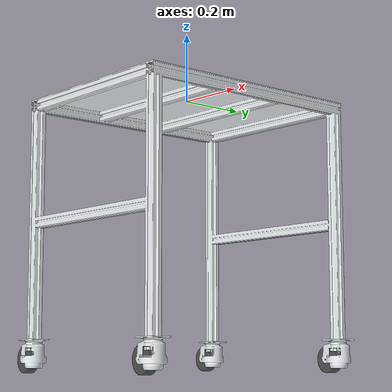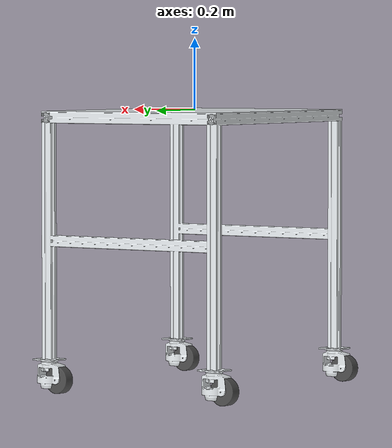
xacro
<?xml version="1.0" encoding="utf-8"?>
<robot xmlns:xacro="http://www.ros.org/wiki/xacro"
  name="M_table_1">
  <link
    name="Manipulator_table">
    <inertial>
      <origin
        xyz="-1.11022302462516E-16 -3.33066907387547E-16 -0.12843839742467"
        rpy="0 0 0" />
      <mass
        value="9.44837783117277" />
      <inertia
        ixx="0.263691414833342"
        ixy="-2.16344567972567E-17"
        ixz="7.54463426580892E-19"
        iyy="0.221672763716765"
        iyz="4.92737402253372E-20"
        izz="0.320610679708212" />
    </inertial>
    <visual>
      <origin
        xyz="0 0 0"
        rpy="0 0 0" />
      <geometry>
        <mesh
          filename="package://ur3e_robot_description/meshes/table/Manipulator_table.STL" />
      </geometry>
      <material
        name="">
        <color
          rgba="0.898039215686275 0.917647058823529 0.929411764705882 1" />
      </material>
    </visual>
    <collision>
      <origin
        xyz="0 0 0"
        rpy="0 0 0" />
      <geometry>
        <mesh
          filename="package://ur3e_robot_description/meshes/table/Manipulator_table.STL" />
      </geometry>
    </collision>
  </link>
  <link
    name="Caster_Body_RR">
    <inertial>
      <origin
        xyz="-0.0010819914602479 -2.86080234945807E-06 -0.0436046218691041"
        rpy="0 0 0" />
      <mass
        value="0.401423455702813" />
      <inertia
        ixx="0.000241401012917318"
        ixy="-2.45853840008132E-08"
        ixz="8.72091409234467E-07"
        iyy="0.000298338270939389"
        iyz="-6.11684660408836E-10"
        izz="0.000239127388240778" />
    </inertial>
    <visual>
      <origin
        xyz="0 0 0"
        rpy="0 0 0" />
      <geometry>
        <mesh
          filename="package://ur3e_robot_description/meshes/table/Caster_Body_RR.STL" />
      </geometry>
      <material
        name="">
        <color
          rgba="0.898039215686275 0.917647058823529 0.929411764705882 1" />
      </material>
    </visual>
    <collision>
      <origin
        xyz="0 0 0"
        rpy="0 0 0" />
      <geometry>
        <mesh
          filename="package://ur3e_robot_description/meshes/table/Caster_Body_RR.STL" />
      </geometry>
    </collision>
  </link>
  <joint
    name="J_Caster_Body_RR"
    type="fixed">
    <origin
      xyz="-0.265 -0.335 -0.683"
      rpy="0 0 -0.0941732290527097" />
    <parent
      link="Manipulator_table" />
    <child
      link="Caster_Body_RR" />
    <axis
      xyz="0 0 1" />
  </joint>
  <link
    name="Caster_Wheel_RR">
    <inertial>
      <origin
        xyz="-1.11022302462516E-16 3.46944695195361E-18 1.11022302462516E-16"
        rpy="0 0 0" />
      <mass
        value="0.132136244110216" />
      <inertia
        ixx="5.61757127027404E-05"
        ixy="1.66435558133998E-21"
        ixz="-4.2351647362715E-22"
        iyy="5.61757127027403E-05"
        iyz="-1.30158555596785E-21"
        izz="9.26404044822224E-05" />
    </inertial>
    <visual>
      <origin
        xyz="0 0 0"
        rpy="0 0 0" />
      <geometry>
        <mesh
          filename="package://ur3e_robot_description/meshes/table/Caster_Wheel_RR.STL" />
      </geometry>
      <material
        name="">
        <color
          rgba="0.298039215686275 0.298039215686275 0.298039215686275 1" />
      </material>
    </visual>
    <collision>
      <origin
        xyz="0 0 0"
        rpy="0 0 0" />
      <geometry>
        <mesh
          filename="package://ur3e_robot_description/meshes/table/Caster_Wheel_RR.STL" />
      </geometry>
    </collision>
  </link>
  <joint
    name="J_Caster_Wheel_RR"
    type="fixed">
    <origin
      xyz="-0.0344500000000002 0 -0.056225"
      rpy="1.5707963267949 0 0" />
    <parent
      link="Caster_Body_RR" />
    <child
      link="Caster_Wheel_RR" />
    <axis
      xyz="0 0 -1" />
  </joint>
  <link
    name="Caster_Body_RF">
    <inertial>
      <origin
        xyz="-0.00108199157851491 -2.86062615473259E-06 -0.0436046217372837"
        rpy="0 0 0" />
      <mass
        value="0.401423458524117" />
      <inertia
        ixx="0.000241401013878427"
        ixy="-2.45831797236014E-08"
        ixz="8.72092344291227E-07"
        iyy="0.000298338271551571"
        iyz="-6.12822902530198E-10"
        izz="0.000239127388381237" />
    </inertial>
    <visual>
      <origin
        xyz="0 0 0"
        rpy="0 0 0" />
      <geometry>
        <mesh
          filename="package://ur3e_robot_description/meshes/table/Caster_Body_RF.STL" />
      </geometry>
      <material
        name="">
        <color
          rgba="0.898039215686275 0.917647058823529 0.929411764705882 1" />
      </material>
    </visual>
    <collision>
      <origin
        xyz="0 0 0"
        rpy="0 0 0" />
      <geometry>
        <mesh
          filename="package://ur3e_robot_description/meshes/table/Caster_Body_RF.STL" />
      </geometry>
    </collision>
  </link>
  <joint
    name="J_Caster_Body_RF"
    type="fixed">
    <origin
      xyz="0.265 -0.335 -0.683"
      rpy="0 0 -0.101833662211255" />
    <parent
      link="Manipulator_table" />
    <child
      link="Caster_Body_RF" />
    <axis
      xyz="0 0 1" />
  </joint>
  <link
    name="Caster_Wheel_RF">
    <inertial>
      <origin
        xyz="-2.77555756156289E-17 0 -1.11022302462516E-16"
        rpy="0 0 0" />
      <mass
        value="0.132136244110216" />
      <inertia
        ixx="5.61757127027405E-05"
        ixy="3.43126324185448E-21"
        ixz="-6.7762635780344E-21"
        iyy="5.61757127027405E-05"
        iyz="5.67015494947863E-21"
        izz="9.26404044822227E-05" />
    </inertial>
    <visual>
      <origin
        xyz="0 0 0"
        rpy="0 0 0" />
      <geometry>
        <mesh
          filename="package://ur3e_robot_description/meshes/table/Caster_Wheel_RF.STL" />
      </geometry>
      <material
        name="">
        <color
          rgba="0.298039215686275 0.298039215686275 0.298039215686275 1" />
      </material>
    </visual>
    <collision>
      <origin
        xyz="0 0 0"
        rpy="0 0 0" />
      <geometry>
        <mesh
          filename="package://ur3e_robot_description/meshes/table/Caster_Wheel_RF.STL" />
      </geometry>
    </collision>
  </link>
  <joint
    name="J_Caster_Wheel_RF"
    type="fixed">
    <origin
      xyz="-0.0344499999999999 0 -0.056225"
      rpy="1.5707963267949 0 0" />
    <parent
      link="Caster_Body_RF" />
    <child
      link="Caster_Wheel_RF" />
    <axis
      xyz="0 0 -1" />
  </joint>
  <link
    name="Caster_Body_LR">
    <inertial>
      <origin
        xyz="-0.00108199158371591 -2.86062812537846E-06 -0.0436046217365273"
        rpy="0 0 0" />
      <mass
        value="0.401423458405097" />
      <inertia
        ixx="0.000241401013850428"
        ixy="-2.45831616665869E-08"
        ixz="8.72092308562468E-07"
        iyy="0.000298338271473234"
        iyz="-6.12834050320692E-10"
        izz="0.000239127388320259" />
    </inertial>
    <visual>
      <origin
        xyz="0 0 0"
        rpy="0 0 0" />
      <geometry>
        <mesh
          filename="package://ur3e_robot_description/meshes/table/Caster_Body_LR.STL" />
      </geometry>
      <material
        name="">
        <color
          rgba="0.898039215686275 0.917647058823529 0.929411764705882 1" />
      </material>
    </visual>
    <collision>
      <origin
        xyz="0 0 0"
        rpy="0 0 0" />
      <geometry>
        <mesh
          filename="package://ur3e_robot_description/meshes/table/Caster_Body_LR.STL" />
      </geometry>
    </collision>
  </link>
  <joint
    name="J_Caster_Body_LR"
    type="fixed">
    <origin
      xyz="-0.265 0.335 -0.683"
      rpy="0 0 -0.101833662211255" />
    <parent
      link="Manipulator_table" />
    <child
      link="Caster_Body_LR" />
    <axis
      xyz="0 0 1" />
  </joint>
  <link
    name="Caster_Wheel_LR">
    <inertial>
      <origin
        xyz="0 0 0"
        rpy="0 0 0" />
      <mass
        value="0.132136244110216" />
      <inertia
        ixx="5.61757127027404E-05"
        ixy="-9.99488879800872E-22"
        ixz="-1.3976043629696E-20"
        iyy="5.61757127027403E-05"
        iyz="6.4983051750949E-22"
        izz="9.26404044822225E-05" />
    </inertial>
    <visual>
      <origin
        xyz="0 0 0"
        rpy="0 0 0" />
      <geometry>
        <mesh
          filename="package://ur3e_robot_description/meshes/table/Caster_Wheel_LR.STL" />
      </geometry>
      <material
        name="">
        <color
          rgba="0.298039215686275 0.298039215686275 0.298039215686275 1" />
      </material>
    </visual>
    <collision>
      <origin
        xyz="0 0 0"
        rpy="0 0 0" />
      <geometry>
        <mesh
          filename="package://ur3e_robot_description/meshes/table/Caster_Wheel_LR.STL" />
      </geometry>
    </collision>
  </link>
  <joint
    name="J_Caster_Wheel_LR"
    type="fixed">
    <origin
      xyz="-0.0344500000000002 0 -0.0562249999999998"
      rpy="1.5707963267949 0 0" />
    <parent
      link="Caster_Body_LR" />
    <child
      link="Caster_Wheel_LR" />
    <axis
      xyz="0 0 -1" />
  </joint>
  <link
    name="Caster_Body_LF">
    <inertial>
      <origin
        xyz="-0.00108199158371469 -2.86062813779908E-06 -0.0436046217365266"
        rpy="0 0 0" />
      <mass
        value="0.401423458405148" />
      <inertia
        ixx="0.00024140101385046"
        ixy="-2.45831617231281E-08"
        ixz="8.72092308559734E-07"
        iyy="0.000298338271473235"
        iyz="-6.12833973194068E-10"
        izz="0.000239127388320258" />
    </inertial>
    <visual>
      <origin
        xyz="0 0 0"
        rpy="0 0 0" />
      <geometry>
        <mesh
          filename="package://ur3e_robot_description/meshes/table/Caster_Body_LF.STL" />
      </geometry>
      <material
        name="">
        <color
          rgba="0.898039215686275 0.917647058823529 0.929411764705882 1" />
      </material>
    </visual>
    <collision>
      <origin
        xyz="0 0 0"
        rpy="0 0 0" />
      <geometry>
        <mesh
          filename="package://ur3e_robot_description/meshes/table/Caster_Body_LF.STL" />
      </geometry>
    </collision>
  </link>
  <joint
    name="J_Caster_Body_LF"
    type="fixed">
    <origin
      xyz="0.265 0.335 -0.683"
      rpy="0 0 -0.101833662211255" />
    <parent
      link="Manipulator_table" />
    <child
      link="Caster_Body_LF" />
    <axis
      xyz="0 0 1" />
  </joint>
  <link
    name="Caster_Wheel_LF">
    <inertial>
      <origin
        xyz="0 -3.46944695195361E-18 -1.38777878078145E-17"
        rpy="0 0 0" />
      <mass
        value="0.132136244110216" />
      <inertia
        ixx="5.61757127027404E-05"
        ixy="5.44753992083278E-21"
        ixz="-9.3173624197973E-21"
        iyy="5.61757127027404E-05"
        iyz="4.35034367839207E-21"
        izz="9.26404044822226E-05" />
    </inertial>
    <visual>
      <origin
        xyz="0 0 0"
        rpy="0 0 0" />
      <geometry>
        <mesh
          filename="package://ur3e_robot_description/meshes/table/Caster_Wheel_LF.STL" />
      </geometry>
      <material
        name="">
        <color
          rgba="0.298039215686275 0.298039215686275 0.298039215686275 1" />
      </material>
    </visual>
    <collision>
      <origin
        xyz="0 0 0"
        rpy="0 0 0" />
      <geometry>
        <mesh
          filename="package://ur3e_robot_description/meshes/table/Caster_Wheel_LF.STL" />
      </geometry>
    </collision>
  </link>
  <joint
    name="J_Caster_Wheel_LF"
    type="fixed">
    <origin
      xyz="-0.0344499999999998 0 -0.056225"
      rpy="1.5707963267949 0 0" />
    <parent
      link="Caster_Body_LF" />
    <child
      link="Caster_Wheel_LF" />
    <axis
      xyz="0 0 -1" />
  </joint>
</robot>
